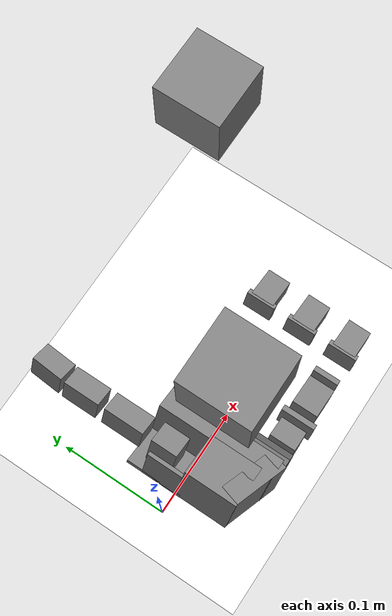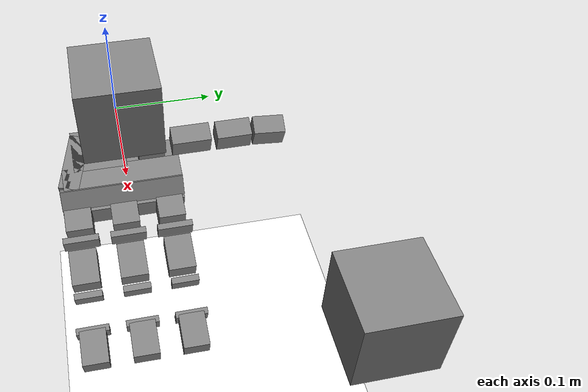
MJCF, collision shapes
<mujoco model="leap_scene">
  <include file="leap_lh_mjx.xml"/>
  <include file="reorientation_cube.xml"/>

  <statistic center="0.15 0 0" extent="0.4" meansize="0.01"/>

  <visual>
    <headlight diffuse=".8 .8 .8" ambient=".2 .2 .2" specular="1 1 1"/>
    <rgba force="1 0 0 1"/>
    <global azimuth="120" elevation="-20"/>
    <map force="0.01" stiffness="500"/>
    <scale forcewidth="0.1" contactwidth="0.5" contactheight="0.2"/>
    <quality shadowsize="8192"/>
  </visual>

  <asset>
    <texture type="skybox" builtin="gradient" rgb1="1 1 1" rgb2="1 1 1" width="800" height="800"/>
    <texture type="2d" name="groundplane" builtin="checker" mark="edge" rgb1="1 1 1" rgb2="1 1 1" markrgb="0 0 0"
      width="300" height="300"/>
    <material name="groundplane" texture="groundplane" texuniform="true" texrepeat="5 5" reflectance="0"/>
  </asset>

  <worldbody>
    <camera name="side" pos="-0.183 0.396 0.296" xyaxes="-0.783 -0.622 -0.000 0.332 -0.419 0.845"/>
    <geom name="floor" pos="0 0 -0.25" size="0 0 0.01" type="plane" material="groundplane" contype="2" conaffinity="2"/>
    <body name="goal" mocap="true" pos="0.325 0.17 0.0475">
      <geom type="mesh" mesh="cube_mesh" material="dexcube" contype="0" conaffinity="0" density="0" group="2"/>
      <geom type="box" size=".035 .035 .035" mass=".108" group="3"/>
    </body>
  </worldbody>

  <sensor>
    <!-- cube. -->
    <framepos name="cube_position" objtype="body" objname="cube"/>
    <framequat name="cube_orientation" objtype="body" objname="cube"/>
    <framelinvel name="cube_linvel" objtype="body" objname="cube"/>
    <frameangvel name="cube_angvel" objtype="body" objname="cube"/>
    <frameangacc name="cube_angacc" objtype="body" objname="cube"/>
    <framezaxis name="cube_upvector" objtype="body" objname="cube"/>

    <!-- hand. -->
    <framepos name="palm_position" objtype="site" objname="grasp_site"/>
    <framepos name="th_tip_position" objtype="site" objname="th_tip" reftype="site" refname="grasp_site"/>
    <framepos name="if_tip_position" objtype="site" objname="if_tip" reftype="site" refname="grasp_site"/>
    <framepos name="mf_tip_position" objtype="site" objname="mf_tip" reftype="site" refname="grasp_site"/>
    <framepos name="rf_tip_position" objtype="site" objname="rf_tip" reftype="site" refname="grasp_site"/>

    <!-- goal. -->
    <framequat name="cube_goal_orientation" objtype="body" objname="goal"/>
    <framezaxis name="cube_goal_upvector" objtype="body" objname="goal"/>
  </sensor>

  <keyframe>
    <key name="home"
      qpos="
      0.8 0 0.8 0.8
      0.8 0 0.8 0.8
      0.8 0 0.8 0.8
      -0.6 -1.2 0.8 0.4
      0.1 0.0 0.05 0.810967 -0.00262895 -0.585086 -0.000254303"
      ctrl="
      0.8 0 0.8 0.8
      0.8 0 0.8 0.8
      0.8 0 0.8 0.8
      -0.6 -1.2 0.8 0.4" mpos="0.25 0.16 0"
      mquat="1 0 0 0"/>
  </keyframe>
</mujoco>

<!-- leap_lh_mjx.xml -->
<mujoco model="leap_lh">
  <compiler angle="radian" autolimits="true"/>

  <option timestep="0.01" integrator="Euler" iterations="5" ls_iterations="8">
    <flag eulerdamp="disable"/>
  </option>

  <custom>
    <numeric data="30" name="max_contact_points"/>
    <numeric data="12" name="max_geom_pairs"/>
  </custom>

  <asset>
    <material name="black" rgba="0.2 0.2 0.2 1"/>
    <material name="gray" rgba="0.5 0.5 0.5 1"/>
    <mesh name="leap_mount" file="meshes/leap_mount.obj"/>

    <mesh name="palm" file="meshes/palm_left.obj"/>
    <mesh name="base" file="meshes/base.obj"/>
    <mesh name="proximal" file="meshes/proximal.obj"/>
    <mesh name="medial" file="meshes/medial.obj"/>
    <mesh name="distal" file="meshes/distal.obj"/>
    <mesh name="tip" file="meshes/tip.obj"/>
    <mesh name="thumb_mp_left" file="meshes/thumb_mp_left.obj"/>
    <mesh name="thumb_base" file="meshes/thumb_base.obj"/>
    <mesh name="thumb_proximal" file="meshes/thumb_proximal.obj"/>
    <mesh name="thumb_distal" file="meshes/thumb_distal.obj"/>
    <mesh name="thumb_tip" file="meshes/thumb_tip.obj"/>
  </asset>

  <default>
    <default class="leap_lh">
      <geom group="3" friction="0.2" solref="0.02 1.5" solimp="0.9 0.99 0.001"/>
      <default class="visual">
        <geom group="2" type="mesh" contype="0" conaffinity="0" density="0" material="black"/>
      </default>
      <default class="tip">
        <geom size="0.01 0.012 0.016" pos="-0.0012969 -0.0335524 0.0145207"
          quat="0.703552 0.709596 -0.0292107 -0.0252203" type="box" friction="0.7 0.05 0.0002" rgba=".5 .5 .5 .3"/>
      </default>
      <default class="thumb_tip">
        <geom size="0.01 0.012 0.016" pos="-0.00127744 -0.0455619 -0.0144774"
          quat="0.708101 0.705072 -0.0294902 -0.024426" type="box" friction="0.7 0.05 0.0002" rgba=".5 .5 .5 .3"/>
      </default>

      <position kp="3.0" inheritrange="1"/>
      <joint axis="0 0 -1" damping="0.2" armature="0.00149376" actuatorfrcrange="-0.2196 0.2196" frictionloss="0.02"/>

      <default class="mcp">
        <joint range="-0.314 2.23"/>
      </default>
      <default class="rot">
        <joint range="-1.047 1.047"/>
      </default>
      <default class="pip">
        <joint range="-0.506 1.885"/>
      </default>
      <default class="dip">
        <joint range="-0.366 2.042"/>
      </default>
      <default class="thumb_cmc">
        <joint range="-2.094 0.349"/>
      </default>
      <default class="thumb_axl">
        <joint range="-2.094 0.349"/>
      </default>
      <default class="thumb_mcp">
        <joint range="-0.47 2.443"/>
      </default>
      <default class="thumb_ipl">
        <joint range="-1.34 1.88"/>
      </default>

    </default>
  </default>

  <contact>
    <exclude body1="palm" body2="if_bs"/>
    <exclude body1="palm" body2="mf_bs"/>
    <exclude body1="palm" body2="rf_bs"/>
    <exclude body1="palm" body2="th_mp"/>

    <exclude body1="palm" body2="if_px"/>
    <exclude body1="palm" body2="mf_px"/>
    <exclude body1="palm" body2="rf_px"/>
    <exclude body1="palm" body2="th_bs"/>

    <exclude body1="palm" body2="if_md"/>
    <exclude body1="palm" body2="mf_md"/>
    <exclude body1="palm" body2="rf_md"/>
    <exclude body1="palm" body2="th_px"/>

    <exclude body1="leap_mount" body2="if_bs"/>
    <exclude body1="leap_mount" body2="mf_bs"/>
    <exclude body1="leap_mount" body2="rf_bs"/>
    <exclude body1="leap_mount" body2="th_mp"/>

    <exclude body1="leap_mount" body2="if_px"/>
    <exclude body1="leap_mount" body2="mf_px"/>
    <exclude body1="leap_mount" body2="rf_px"/>
    <exclude body1="leap_mount" body2="th_bs"/>

    <exclude body1="leap_mount" body2="if_md"/>
    <exclude body1="leap_mount" body2="mf_md"/>
    <exclude body1="leap_mount" body2="rf_md"/>
    <exclude body1="leap_mount" body2="th_px"/>

    <exclude body1="if_bs" body2="mf_bs"/>
    <exclude body1="if_bs" body2="rf_bs"/>
    <exclude body1="mf_bs" body2="rf_bs"/>

    <exclude body1="th_mp" body2="if_bs"/>
    <exclude body1="th_mp" body2="mf_bs"/>
    <exclude body1="th_mp" body2="rf_bs"/>
  </contact>

  <worldbody>
    <light name="spotlight" mode="targetbodycom" target="palm" pos="3 0 4"/>
    <body name="leap_mount" pos="0 0 0" quat="1 0 0 0" childclass="leap_lh">
      <site name="grasp_site" pos="0.11 0.0 0.03" group="4"/>
      <body name="palm" pos="0.2 -0.061 -0.06045" quat="0 1 0 -0.175">
        <inertial pos="-0.12546 -0.047739 0.015867" quat="0.423786 0.570263 -0.402758 0.577054" mass="0.235"
          diaginertia="0.000405067 0.000304529 0.000179484"/>
        <geom name="palm_visual" pos="-0.0955 -0.117 0.0207" quat="9.38189e-07 9.38183e-07 0.707105 0.707109"
          class="visual" mesh="palm"/>
        <geom name="palm_collision_1" size="0.011 0.013 0.017" pos="-0.0848 -0.0996 0.0152" type="box"/>
        <geom name="palm_collision_2" size="0.011 0.013 0.017" pos="-0.0848 -0.0546 0.0152" type="box"/>
        <geom name="palm_collision_3" size="0.011 0.013 0.017" pos="-0.0848 -0.0096 0.0152" type="box"/>
        <geom name="palm_collision_4" size="0.029 0.01 0.023" pos="-0.1428 -0.0126 0.0147" quat="0.989016 0 0 0.147806"
          type="box"/>
        <geom name="palm_collision_5" size="0.01 0.06 0.015" pos="-0.1058 -0.0555 0.0232" type="box"/>
        <geom name="palm_collision_6" size="0.005 0.06 0.01" pos="-0.1078 -0.0555 0.0002" quat="0.923956 0 0.382499 0"
          type="box"/>
        <geom name="palm_collision_7" size="0.012 0.058 0.023" pos="-0.1238 -0.0575 0.0147" type="box"/>
        <geom name="palm_collision_8" size="0.022 0.026 0.023" pos="-0.1538 -0.0375 0.0147" type="box"/>
        <geom name="palm_collision_9" size="0.002 0.018 0.017" pos="-0.1738 -0.0815 0.0202" type="box"/>
        <geom name="palm_collision_10" size="0.022 0.028 0.002" pos="-0.1538 -0.0875 0.0362" type="box"/>
        <body name="if_bs" pos="-0.0825 -0.0857 0.0078" quat="0.500003 0.5 0.5 -0.499997">
          <inertial pos="-0.022516 0.033882 0.016359" quat="0.388092 0.677951 -0.247713 0.573067" mass="0.044"
            diaginertia="1.74972e-05 1.61504e-05 7.21342e-06"/>
          <joint name="if_mcp" class="mcp"/>
          <geom name="if_bs_visual" pos="0.0084 0.0077 0.01465" quat="1 0 0 0" class="visual" mesh="base"/>
          <geom name="if_bs_collision_1" size="0.01 0.003 0.017" pos="0 0.018 0.0147" type="box"/>
          <body name="if_px" pos="-0.0122 0.0381 0.0145" quat="0.500003 -0.5 -0.499997 0.5">
            <inertial pos="0.0075 -0.0002 -0.011" quat="0 0.707107 0 0.707107" mass="0.032"
              diaginertia="4.8853e-06 4.3733e-06 3.0933e-06"/>
            <joint name="if_rot" class="rot"/>
            <geom name="if_px_visual" pos="0.0096 0.0002 0.0007" quat="0.500003 -0.5 -0.5 -0.499997" class="visual"
              mesh="proximal"/>
            <geom name="if_px_collision" size="0.017 0.013 0.011" pos="0.0075 -0.0002 -0.011" type="box"/>
            <body name="if_md" pos="0.015 0.0143 -0.013" quat="0.500003 0.5 -0.5 0.499997">
              <inertial pos="0.0054215 -0.029148 0.015" quat="0.687228 0.687228 0.166487 0.166487" mass="0.037"
                diaginertia="8.28004e-06 8.1598e-06 5.39516e-06"/>
              <joint name="if_pip" class="pip"/>
              <geom name="if_md_visual" pos="0.0211 -0.0084 0.0097" quat="2.67949e-08 -1 0 0" class="visual"
                mesh="medial"/>
              <geom name="if_md_collision_1" size="0.008 0.003 0.013" pos="0 -0.02 0.015" type="box"/>
              <body name="if_ds" pos="0 -0.0361 0.0002">
                <inertial pos="-0.0008794 -0.027019 0.014594" quat="0.702905 0.710643 -0.0212937 -0.0214203"
                  mass="0.016" diaginertia="3.71863e-06 3.02396e-06 1.6518e-06"/>
                <joint name="if_dip" class="dip"/>
                <geom name="if_ds_visual" pos="0.0132 -0.0061 0.0144" quat="2.67949e-08 1 0 0" class="visual"
                  mesh="distal"/>
                <geom name="if_ds_collision_1" size="0.01 0.003 0.015" pos="0 -0.017 0.015" type="box"/>
                <geom name="if_tip" class="tip"/>
                <geom type="mesh" mesh="tip" class="visual" material="gray"/>
                <site name="if_tip" pos="0 -0.05 0.015" group="4"/>
              </body>
            </body>
          </body>
        </body>
        <body name="mf_bs" pos="-0.0825 -0.0403 0.0078" quat="0.500003 0.5 0.5 -0.499997">
          <inertial pos="-0.022516 0.033882 0.016359" quat="0.388092 0.677951 -0.247713 0.573067" mass="0.044"
            diaginertia="1.74972e-05 1.61504e-05 7.21342e-06"/>
          <joint name="mf_mcp" class="mcp"/>
          <geom name="mf_bs_visual" pos="0.0084 0.0077 0.01465" quat="1 0 0 0" class="visual" mesh="base"/>
          <geom name="mf_bs_collision_1" size="0.01 0.003 0.017" pos="0 0.018 0.0147" type="box"/>
          <body name="mf_px" pos="-0.0122 0.0381 0.0145" quat="0.500003 -0.5 -0.499997 0.5">
            <inertial pos="0.0075 -0.0002 -0.011" quat="0 0.707107 0 0.707107" mass="0.032"
              diaginertia="4.8853e-06 4.3733e-06 3.0933e-06"/>
            <joint name="mf_rot" class="rot"/>
            <geom name="mf_px_visual" pos="0.0096 0.0002 0.0007" quat="0.500003 -0.5 -0.5 -0.499997" class="visual"
              mesh="proximal"/>
            <geom name="mf_px_collision" size="0.017 0.013 0.011" pos="0.0075 -0.0002 -0.011" type="box"/>
            <body name="mf_md" pos="0.015 0.0143 -0.013" quat="0.500003 0.5 -0.5 0.499997">
              <inertial pos="0.0054215 -0.029148 0.015" quat="0.687228 0.687228 0.166487 0.166487" mass="0.037"
                diaginertia="8.28004e-06 8.1598e-06 5.39516e-06"/>
              <joint name="mf_pip" class="pip"/>
              <geom name="mf_md_visual" pos="0.0211 -0.0084 0.0097" quat="2.67949e-08 -1 0 0" class="visual"
                mesh="medial"/>
              <geom name="mf_md_collision_1" size="0.008 0.003 0.013" pos="0 -0.02 0.015" type="box"/>
              <body name="mf_ds" pos="0 -0.0361 0.0002">
                <inertial pos="-0.0008794 -0.027019 0.014594" quat="0.702905 0.710643 -0.0212937 -0.0214203"
                  mass="0.016" diaginertia="3.71863e-06 3.02396e-06 1.6518e-06"/>
                <joint name="mf_dip" class="dip"/>
                <geom name="mf_ds_visual" pos="0.0132 -0.0061 0.0144" quat="2.67949e-08 1 0 0" class="visual"
                  mesh="distal"/>
                <geom name="mf_ds_collision_1" size="0.01 0.003 0.015" pos="0 -0.017 0.015" type="box"/>
                <geom name="mf_tip" class="tip"/>
                <geom type="mesh" mesh="tip" class="visual" material="gray"/>
                <site name="mf_tip" pos="0 -0.05 0.015" group="4"/>
              </body>
            </body>
          </body>
        </body>
        <body name="rf_bs" pos="-0.0825 0.0051 0.0078" quat="0.500003 0.5 0.5 -0.499997">
          <inertial pos="-0.022516 0.033882 0.016359" quat="0.388092 0.677951 -0.247713 0.573067" mass="0.044"
            diaginertia="1.74972e-05 1.61504e-05 7.21342e-06"/>
          <joint name="rf_mcp" class="mcp"/>
          <geom name="rf_bs_visual" pos="0.0084 0.0077 0.01465" quat="1 0 0 0" class="visual" mesh="base"/>
          <geom name="rf_bs_collision_1" size="0.01 0.003 0.017" pos="0 0.018 0.0147" type="box"/>
          <body name="rf_px" pos="-0.0122 0.0381 0.0145" quat="0.500003 -0.5 -0.499997 0.5">
            <inertial pos="0.0075 -0.0002 -0.011" quat="0 0.707107 0 0.707107" mass="0.032"
              diaginertia="4.8853e-06 4.3733e-06 3.0933e-06"/>
            <joint name="rf_rot" class="rot"/>
            <geom name="rf_px_visual" pos="0.0096 0.0002 0.0007" quat="0.500003 -0.5 -0.5 -0.499997" class="visual"
              mesh="proximal"/>
            <geom name="rf_px_collision" size="0.017 0.013 0.011" pos="0.0075 -0.0002 -0.011" type="box"/>
            <body name="rf_md" pos="0.015 0.0143 -0.013" quat="0.500003 0.5 -0.5 0.499997">
              <inertial pos="0.0054215 -0.029148 0.015" quat="0.687228 0.687228 0.166487 0.166487" mass="0.037"
                diaginertia="8.28004e-06 8.1598e-06 5.39516e-06"/>
              <joint name="rf_pip" class="pip"/>
              <geom name="rf_md_visual" pos="0.0211 -0.0084 0.0097" quat="2.67949e-08 -1 0 0" class="visual"
                mesh="medial"/>
              <geom name="rf_md_collision_1" size="0.008 0.003 0.013" pos="0 -0.02 0.015" type="box"/>
              <body name="rf_ds" pos="0 -0.03609 0.0002">
                <inertial pos="-0.0008794 -0.027019 0.014594" quat="0.702905 0.710643 -0.0212937 -0.0214203"
                  mass="0.016" diaginertia="3.71863e-06 3.02396e-06 1.6518e-06"/>
                <joint name="rf_dip" class="dip"/>
                <geom name="rf_ds_visual" pos="0.0132 -0.0061 0.0145" quat="1.32679e-06 1 0 0" class="visual"
                  mesh="distal"/>
                <geom name="rf_ds_collision_1" size="0.01 0.003 0.015" pos="0 -0.017 0.015" type="box"/>
                <geom name="rf_tip" class="tip"/>
                <geom type="mesh" mesh="tip" class="visual" material="gray"/>
                <site name="rf_tip" pos="0 -0.05 0.015" group="4"/>
              </body>
            </body>
          </body>
        </body>

        <body name="th_mp" pos="-0.1448 -0.09 0.0049" quat="0.707109 0 0.707105 0">
          <inertial pos="-0.0069 0 -0.0109" quat="0 0.707107 0 0.707107" mass="0.032"
            diaginertia="4.8853e-06 4.3733e-06 3.0933e-06"/>
          <joint name="th_cmc" class="thumb_cmc"/>
          <geom name="th_mp_visual" pos="0.0439 0.0068 0.02146" quat="0.707109 0.707105 0 0" class="visual"
            mesh="thumb_mp_left"/>
          <geom name="th_mp_collision" size="0.017 0.013 0.011" pos="-0.0069 0 -0.0109" type="box"/>
          <body name="th_bs" pos="0 -0.0143 -0.013" quat="0.500003 -0.5 -0.5 -0.499997">
            <inertial pos="0 0 -0.0070806" quat="0.707107 0.707107 0 0" mass="0.003"
              diaginertia="6.1932e-07 5.351e-07 2.1516e-07"/>
            <joint name="th_axl" class="thumb_axl"/>
            <geom name="th_bs_collision_1" pos="0.01196 0 -0.0158" quat="0.707109 0.707105 0 0" class="visual"
              mesh="thumb_base"/>
            <body name="th_px" pos="0 0.0145 -0.017" quat="0.707109 -0.707105 0 0">
              <inertial pos="-0.0020593 0.015912 -0.013733" quat="0.698518 0.697382 -0.104933 0.121324" mass="0.038"
                diaginertia="9.87104e-06 9.32653e-06 4.36203e-06"/>
              <joint name="th_mcp" class="thumb_mcp"/>
              <geom name="th_px_visual" pos="0.0439 0.0579 -0.0086" quat="1 0 0 0" class="visual" mesh="thumb_proximal"/>
              <geom name="th_px_collision_1" size="0.01 0.02 0.012" pos="0 0.0105 -0.014" type="box"/>
              <body name="th_ds" pos="0 0.0466 0.0002" quat="1.32679e-06 0 0 1">
                <inertial pos="0.00096191 -0.024203 -0.014419" quat="0.35287 0.311272 -0.632839 0.614904" mass="0.049"
                  diaginertia="2.08591e-05 2.0402e-05 4.71335e-06"/>
                <joint name="th_ipl" class="thumb_ipl"/>
                <geom name="th_ds_visual" pos="0.0625 0.0784 0.0489" quat="1 0 0 0" class="visual" mesh="thumb_distal"/>
                <geom name="th_ds_collision_1" size="0.01 0.018 0.012" pos="0 -0.0085 -0.015" type="box"/>
                <geom name="th_tip" class="thumb_tip"/>
                <site name="th_tip" pos="0 -0.06 -0.015" group="4"/>
                <geom type="mesh" mesh="thumb_tip" class="visual" material="gray"/>
              </body>
            </body>
          </body>
        </body>
      </body>
    </body>
  </worldbody>

  <actuator>
    <position name="if_mcp_act" joint="if_mcp" class="mcp"/>
    <position name="if_rot_act" joint="if_rot" class="rot"/>
    <position name="if_pip_act" joint="if_pip" class="pip"/>
    <position name="if_dip_act" joint="if_dip" class="dip"/>
    <position name="mf_mcp_act" joint="mf_mcp" class="mcp"/>
    <position name="mf_rot_act" joint="mf_rot" class="rot"/>
    <position name="mf_pip_act" joint="mf_pip" class="pip"/>
    <position name="mf_dip_act" joint="mf_dip" class="dip"/>
    <position name="rf_mcp_act" joint="rf_mcp" class="mcp"/>
    <position name="rf_rot_act" joint="rf_rot" class="rot"/>
    <position name="rf_pip_act" joint="rf_pip" class="pip"/>
    <position name="rf_dip_act" joint="rf_dip" class="dip"/>
    <position name="th_cmc_act" joint="th_cmc" class="thumb_cmc"/>
    <position name="th_axl_act" joint="th_axl" class="thumb_axl"/>
    <position name="th_mcp_act" joint="th_mcp" class="thumb_mcp"/>
    <position name="th_ipl_act" joint="th_ipl" class="thumb_ipl"/>
  </actuator>
</mujoco>

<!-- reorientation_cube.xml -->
<mujoco>
  <default>
    <default class="cube">
      <geom friction=".3 0.05" conaffinity="2" condim="3"/>
    </default>
  </default>

  <asset>
    <texture name="cube" type="cube" fileup="reorientation_cube_textures/fileup.png"
      fileback="reorientation_cube_textures/fileback.png" filedown="reorientation_cube_textures/filedown.png"
      filefront="reorientation_cube_textures/filefront.png" fileleft="reorientation_cube_textures/fileleft.png"
      fileright="reorientation_cube_textures/fileright.png"/>
    <material name="cube" texture="cube"/>
    <texture name="graycube" type="cube" fileup="reorientation_cube_textures/grayup.png"
      fileback="reorientation_cube_textures/grayback.png" filedown="reorientation_cube_textures/graydown.png"
      filefront="reorientation_cube_textures/grayfront.png" fileleft="reorientation_cube_textures/grayleft.png"
      fileright="reorientation_cube_textures/grayright.png"/>
    <material name="graycube" texture="graycube"/>
    <texture name="dexcube" type="2d" file="reorientation_cube_textures/dex_cube.png"/>
    <material name="dexcube" texture="dexcube"/>
    <mesh name="cube_mesh" file="meshes/dex_cube.obj" scale="0.035 0.035 0.035"/>
  </asset>

  <worldbody>
    <body name="cube" pos="0.11 0.0 0.1" quat="1 0 0 0" childclass="cube">
      <freejoint name="cube_freejoint"/>
      <geom type="mesh" mesh="cube_mesh" material="dexcube" contype="0" conaffinity="0" density="0" group="2"/>
      <geom name="cube" type="box" size=".035 .035 .035" mass=".108" group="3"/>
      <site name="cube_center" pos="0 0 0" group="4"/>
    </body>
  </worldbody>
</mujoco>
